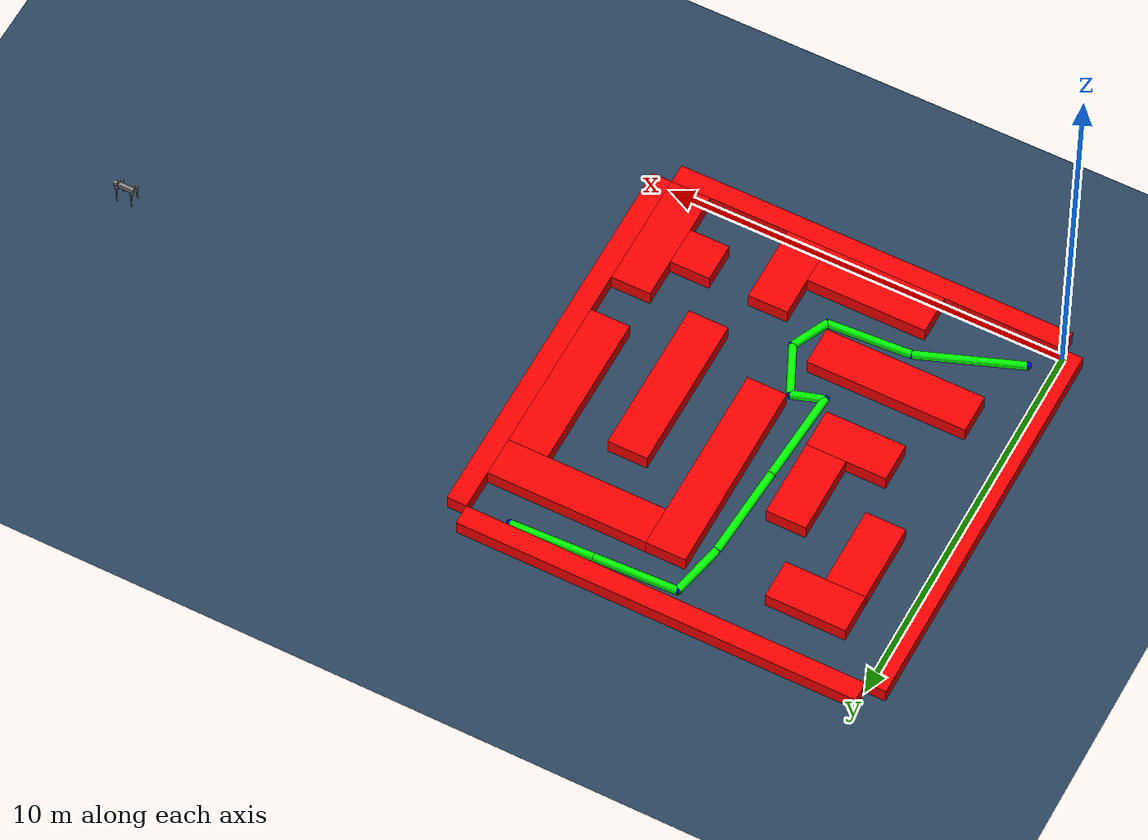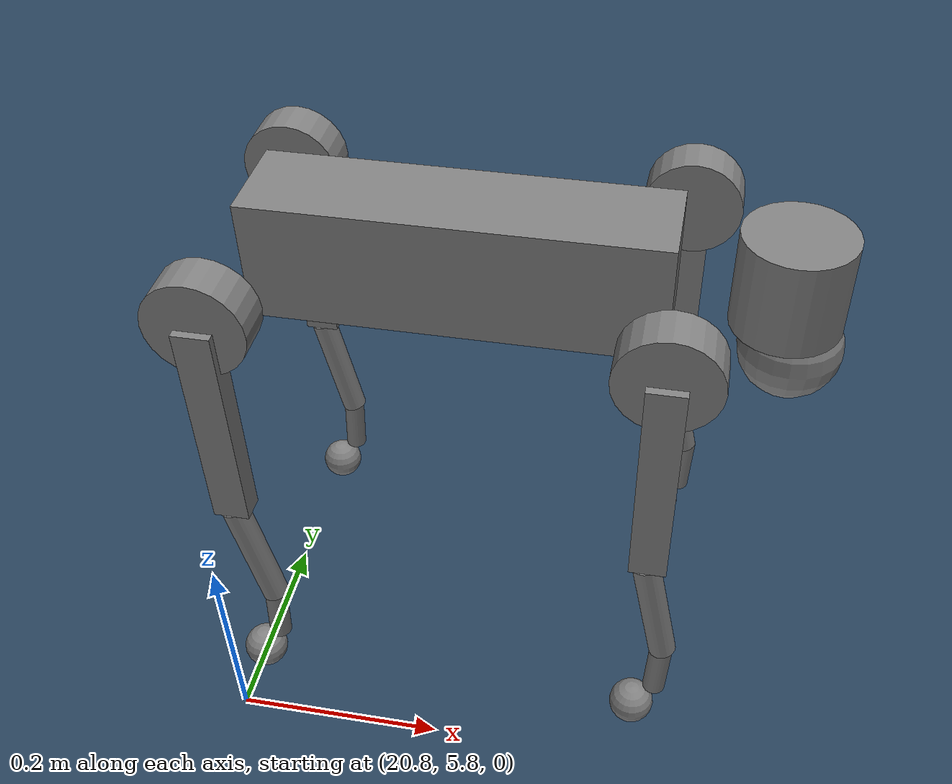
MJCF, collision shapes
<mujoco model="maze">

    <!-- import the unitree go2 -->
    <include file="go2_noel_maze.xml"/>

    <!-- create the environment which contains the obstacles -->
    <worldbody>
        <geom name="obstacle1" type="box" size="1 0.5 0.2" pos="2 8.5 0.2" rgba="1 0 0 1" contype="1" conaffinity="1"/>
        <geom name="obstacle2" type="box" size="0.5 1 0.2" pos="1.5 7 0.2" rgba="1 0 0 1" contype="1" conaffinity="1"/>
        <geom name="obstacle3" type="box" size="0.5 1 0.2" pos="3.5 6 0.2" rgba="1 0 0 1" contype="1" conaffinity="1"/>
        <geom name="obstacle4" type="box" size="1 0.5 0.2" pos="3 4.5 0.2" rgba="1 0 0 1" contype="1" conaffinity="1"/>
        <geom name="obstacle5" type="box" size="2 0.5 0.2" pos="3 2.5 0.2" rgba="1 0 0 1" contype="1" conaffinity="1"/>
        <geom name="obstacle6" type="box" size="1.5 0.5 0.2" pos="4.5 0.5 0.2" rgba="1 0 0 1" contype="1" conaffinity="1"/>
        <geom name="obstacle7" type="box" size="0.5 1 0.2" pos="6.5 1 0.2" rgba="1 0 0 1" contype="1" conaffinity="1"/>
        <geom name="obstacle8" type="box" size="0.5 2 0.2" pos="7.5 5 0.2" rgba="1 0 0 1" contype="1" conaffinity="1"/>
        <geom name="obstacle9" type="box" size="0.5 0.5 0.2" pos="8.5 1.5 0.2" rgba="1 0 0 1" contype="1" conaffinity="1"/>
        <geom name="obstacle10" type="box" size="0.5 1.5 0.2" pos="9.5 1.5 0.2" rgba="1 0 0 1" contype="1" conaffinity="1"/>
        <geom name="obstacle11" type="box" size="0.5 2.5 0.2" pos="5.5 6.5 0.2" rgba="1 0 0 1" contype="1" conaffinity="1"/>
        <geom name="obstacle12" type="box" size="2 0.5 0.2" pos="8 8.5 0.2" rgba="1 0 0 1" contype="1" conaffinity="1"/>
        <geom name="obstacle13" type="box" size="0.5 2 0.2" pos="9.5 6 0.2" rgba="1 0 0 1" contype="1" conaffinity="1"/>

        <geom name="bound_top" type="box" size="5 0.25 0.2" pos="5 10.25 0.2" rgba="1 0 0 1" contype="1" conaffinity="1"/>
        <geom name="bound_bottom" type="box" size="5 0.25 0.2" pos="5 -0.25 0.2" rgba="1 0 0 1" contype="1" conaffinity="1"/>
        <geom name="bound_left" type="box" size="0.25 5 0.2" pos="-0.25 5 0.2" rgba="1 0 0 1" contype="1" conaffinity="1"/>
        <geom name="bound_right" type="box" size="0.25 5 0.2" pos="10.25 5 0.2" rgba="1 0 0 1" contype="1" conaffinity="1"/>

    <geom name="node1" type="sphere" size="0.1" pos="0.6 0.6 0.1" rgba="0 0 1 0.5" contype="2" conaffinity="2"/>
<geom name="node2" type="sphere" size="0.1" pos="3.0575265293945115 1.5393675472933543 0.1" rgba="0 0 1 0.5" contype="2" conaffinity="2"/>
<geom name="node3" type="sphere" size="0.1" pos="5.143443392967892 1.6682645210009241 0.1" rgba="0 0 1 0.5" contype="2" conaffinity="2"/>
<geom name="node4" type="sphere" size="0.1" pos="5.57195457413796 2.5718009992973085 0.1" rgba="0 0 1 0.5" contype="2" conaffinity="2"/>
<geom name="node5" type="sphere" size="0.1" pos="5.016762195966372 3.792475491052378 0.1" rgba="0 0 1 0.5" contype="2" conaffinity="2"/>
<geom name="node6" type="sphere" size="0.1" pos="4.257225295684155 3.541995616273635 0.1" rgba="0 0 1 0.5" contype="2" conaffinity="2"/>
<geom name="node7" type="sphere" size="0.1" pos="4.418293202900143 5.914804862067537 0.1" rgba="1 1 0 0.5" contype="2" conaffinity="2"/>
<geom name="node8" type="sphere" size="0.1" pos="4.57936111011613 8.287614107861438 0.1" rgba="0 0 1 0.5" contype="2" conaffinity="2"/>
<geom name="node9" type="sphere" size="0.1" pos="4.8682057184030825 9.628523381541196 0.1" rgba="0 0 1 0.5" contype="2" conaffinity="2"/>
<geom name="node10" type="sphere" size="0.1" pos="6.934102859201541 9.714261690770599 0.1" rgba="1 1 0 0.5" contype="2" conaffinity="2"/>
<geom name="node11" type="sphere" size="0.1" pos="9 9.8 0.1" rgba="0 0 1 0.5" contype="2" conaffinity="2"/>
<geom name="cap1to2" type="capsule" fromto="0.6 0.6 0.1  3.0575265293945115 1.5393675472933543 0.1" size="0.1" rgba="0 1 0 0.5" contype="2" conaffinity="2"/>
<geom name="cap2to3" type="capsule" fromto="3.0575265293945115 1.5393675472933543 0.1  5.143443392967892 1.6682645210009241 0.1" size="0.1" rgba="0 1 0 0.5" contype="2" conaffinity="2"/>
<geom name="cap3to4" type="capsule" fromto="5.143443392967892 1.6682645210009241 0.1  5.57195457413796 2.5718009992973085 0.1" size="0.1" rgba="0 1 0 0.5" contype="2" conaffinity="2"/>
<geom name="cap4to5" type="capsule" fromto="5.57195457413796 2.5718009992973085 0.1  5.016762195966372 3.792475491052378 0.1" size="0.1" rgba="0 1 0 0.5" contype="2" conaffinity="2"/>
<geom name="cap5to6" type="capsule" fromto="5.016762195966372 3.792475491052378 0.1  4.257225295684155 3.541995616273635 0.1" size="0.1" rgba="0 1 0 0.5" contype="2" conaffinity="2"/>
<geom name="cap6to7" type="capsule" fromto="4.257225295684155 3.541995616273635 0.1  4.418293202900143 5.914804862067537 0.1" size="0.1" rgba="0 1 0 0.5" contype="2" conaffinity="2"/>
<geom name="cap7to8" type="capsule" fromto="4.418293202900143 5.914804862067537 0.1  4.57936111011613 8.287614107861438 0.1" size="0.1" rgba="0 1 0 0.5" contype="2" conaffinity="2"/>
<geom name="cap8to9" type="capsule" fromto="4.57936111011613 8.287614107861438 0.1  4.8682057184030825 9.628523381541196 0.1" size="0.1" rgba="0 1 0 0.5" contype="2" conaffinity="2"/>
<geom name="cap9to10" type="capsule" fromto="4.8682057184030825 9.628523381541196 0.1  6.934102859201541 9.714261690770599 0.1" size="0.1" rgba="0 1 0 0.5" contype="2" conaffinity="2"/>
<geom name="cap10to11" type="capsule" fromto="6.934102859201541 9.714261690770599 0.1  9 9.8 0.1" size="0.1" rgba="0 1 0 0.5" contype="2" conaffinity="2"/>
</worldbody>
</mujoco>

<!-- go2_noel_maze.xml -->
<mujoco model="go2">
  <compiler angle="radian" meshdir="assets" autolimits="true"/>

  <option cone="elliptic" impratio="100"/>

  <default>
    <default class="go2">
      <geom friction="0.6" margin="0.001" condim="1" contype="1" conaffinity="1"/>
      <joint axis="0 1 0" damping="2" armature="0.01" frictionloss="0.2"/>
      <motor ctrlrange="-23.7 23.7"/>
      <default class="abduction">
        <joint axis="1 0 0" range="-1.0472 1.0472"/>
      </default>
      <default class="hip">
        <default class="front_hip">
          <joint range="-1.5708 3.4907"/>
        </default>
        <default class="back_hip">
          <joint range="-0.5236 4.5379"/>
        </default>
      </default>
      <default class="knee">
        <joint range="-2.7227 -0.83776"/>
        <motor ctrlrange="-45.43 45.43"/>
      </default>
      <default class="visual">
        <geom type="mesh" contype="0" conaffinity="0" group="2"/>
      </default>
      <default class="collision">
        <geom group="3"/>
        <default class="foot">
          <geom size="0.022" pos="-0.002 0 -0.213" priority="1" solimp="0.015 1 0.022" condim="6"
            friction="0.8 0.02 0.01"/>
        </default>
      </default>
    </default>
  </default>

  <asset>
    <material name="metal" rgba=".9 .95 .95 1"/>
    <material name="black" rgba="0 0 0 1"/>
    <material name="white" rgba="1 1 1 1"/>
    <material name="gray" rgba="0.671705 0.692426 0.774270 1"/>

    <mesh file="base_0.obj"/>
    <mesh file="base_1.obj"/>
    <mesh file="base_2.obj"/>
    <mesh file="base_3.obj"/>
    <mesh file="base_4.obj"/>
    <mesh file="hip_0.obj"/>
    <mesh file="hip_1.obj"/>
    <mesh file="thigh_0.obj"/>
    <mesh file="thigh_1.obj"/>
    <mesh file="thigh_mirror_0.obj"/>
    <mesh file="thigh_mirror_1.obj"/>
    <mesh file="calf_0.obj"/>
    <mesh file="calf_1.obj"/>
    <mesh file="calf_mirror_0.obj"/>
    <mesh file="calf_mirror_1.obj"/>
    <mesh file="foot.obj"/>
  </asset>

  <worldbody>
    <body name="base" pos="21 6 0.445" childclass="go2">
      <inertial pos="0.021112 0 -0.005366" quat="-0.000543471 0.713435 -0.00173769 0.700719" mass="6.921"
        diaginertia="0.107027 0.0980771 0.0244531"/>
      <freejoint/>
      <geom mesh="base_0" material="black" class="visual"/>
      <geom mesh="base_1" material="black" class="visual"/>
      <geom mesh="base_2" material="black" class="visual"/>
      <geom mesh="base_3" material="white" class="visual"/>
      <geom mesh="base_4" material="gray" class="visual"/>
      <geom size="0.1881 0.04675 0.057" type="box" class="collision"/>
      <geom size="0.05 0.045" pos="0.285 0 0.01" type="cylinder" class="collision"/>
      <geom size="0.047" pos="0.293 0 -0.06" class="collision"/>
      <site name="imu" pos="-0.02557 0 0.04232"/>
      <body name="FL_hip" pos="0.1934 0.0465 0">
        <inertial pos="-0.0054 0.00194 -0.000105" quat="0.497014 0.499245 0.505462 0.498237" mass="0.678"
          diaginertia="0.00088403 0.000596003 0.000479967"/>
        <joint name="FL_hip_joint" class="abduction"/>
        <geom mesh="hip_0" material="metal" class="visual"/>
        <geom mesh="hip_1" material="gray" class="visual"/>
        <geom size="0.046 0.02" pos="0 0.08 0" quat="1 1 0 0" type="cylinder" class="collision"/>
        <body name="FL_thigh" pos="0 0.0955 0">
          <inertial pos="-0.00374 -0.0223 -0.0327" quat="0.829533 0.0847635 -0.0200632 0.551623" mass="1.152"
            diaginertia="0.00594973 0.00584149 0.000878787"/>
          <joint name="FL_thigh_joint" class="front_hip"/>
          <geom mesh="thigh_0" material="metal" class="visual"/>
          <geom mesh="thigh_1" material="gray" class="visual"/>
          <geom size="0.1065 0.01225 0.017" pos="0 0 -0.1065" quat="0.707107 0 0.707107 0" type="box" class="collision"/>
          <body name="FL_calf" pos="0 0 -0.213">
            <inertial pos="0.00629595 -0.000622121 -0.141417" quat="0.710672 0.00154099 -0.00450087 0.703508"
              mass="0.241352" diaginertia="0.0014901 0.00146356 5.31397e-05"/>
            <joint name="FL_calf_joint" class="knee"/>
            <geom mesh="calf_0" material="gray" class="visual"/>
            <geom mesh="calf_1" material="black" class="visual"/>
            <geom size="0.012 0.06" pos="0.008 0 -0.06" quat="0.994493 0 -0.104807 0" type="cylinder" class="collision"/>
            <geom size="0.011 0.0325" pos="0.02 0 -0.148" quat="0.999688 0 0.0249974 0" type="cylinder" class="collision"/>
            <geom pos="0 0 -0.213" mesh="foot" class="visual" material="black"/>
            <geom name="FL" class="foot"/>
          </body>
        </body>
      </body>
      <body name="FR_hip" pos="0.1934 -0.0465 0">
        <inertial pos="-0.0054 -0.00194 -0.000105" quat="0.498237 0.505462 0.499245 0.497014" mass="0.678"
          diaginertia="0.00088403 0.000596003 0.000479967"/>
        <joint name="FR_hip_joint" class="abduction"/>
        <geom mesh="hip_0" material="metal" class="visual" quat="4.63268e-05 1 0 0"/>
        <geom mesh="hip_1" material="gray" class="visual" quat="4.63268e-05 1 0 0"/>
        <geom size="0.046 0.02" pos="0 -0.08 0" quat="0.707107 0.707107 0 0" type="cylinder" class="collision"/>
        <body name="FR_thigh" pos="0 -0.0955 0">
          <inertial pos="-0.00374 0.0223 -0.0327" quat="0.551623 -0.0200632 0.0847635 0.829533" mass="1.152"
            diaginertia="0.00594973 0.00584149 0.000878787"/>
          <joint name="FR_thigh_joint" class="front_hip"/>
          <geom mesh="thigh_mirror_0" material="metal" class="visual"/>
          <geom mesh="thigh_mirror_1" material="gray" class="visual"/>
          <geom size="0.1065 0.01225 0.017" pos="0 0 -0.1065" quat="0.707107 0 0.707107 0" type="box" class="collision"/>
          <body name="FR_calf" pos="0 0 -0.213">
            <inertial pos="0.00629595 0.000622121 -0.141417" quat="0.703508 -0.00450087 0.00154099 0.710672"
              mass="0.241352" diaginertia="0.0014901 0.00146356 5.31397e-05"/>
            <joint name="FR_calf_joint" class="knee"/>
            <geom mesh="calf_mirror_0" material="gray" class="visual"/>
            <geom mesh="calf_mirror_1" material="black" class="visual"/>
            <geom size="0.013 0.06" pos="0.01 0 -0.06" quat="0.995004 0 -0.0998334 0" type="cylinder" class="collision"/>
            <geom size="0.011 0.0325" pos="0.02 0 -0.148" quat="0.999688 0 0.0249974 0" type="cylinder" class="collision"/>
            <geom pos="0 0 -0.213" mesh="foot" class="visual" material="black"/>
            <geom name="FR" class="foot"/>
          </body>
        </body>
      </body>
      <body name="RL_hip" pos="-0.1934 0.0465 0">
        <inertial pos="0.0054 0.00194 -0.000105" quat="0.505462 0.498237 0.497014 0.499245" mass="0.678"
          diaginertia="0.00088403 0.000596003 0.000479967"/>
        <joint name="RL_hip_joint" class="abduction"/>
        <geom mesh="hip_0" material="metal" class="visual" quat="4.63268e-05 0 1 0"/>
        <geom mesh="hip_1" material="gray" class="visual" quat="4.63268e-05 0 1 0"/>
        <geom size="0.046 0.02" pos="0 0.08 0" quat="0.707107 0.707107 0 0" type="cylinder" class="collision"/>
        <body name="RL_thigh" pos="0 0.0955 0">
          <inertial pos="-0.00374 -0.0223 -0.0327" quat="0.829533 0.0847635 -0.0200632 0.551623" mass="1.152"
            diaginertia="0.00594973 0.00584149 0.000878787"/>
          <joint name="RL_thigh_joint" class="back_hip"/>
          <geom mesh="thigh_0" material="metal" class="visual"/>
          <geom mesh="thigh_1" material="gray" class="visual"/>
          <geom size="0.1065 0.01225 0.017" pos="0 0 -0.1065" quat="0.707107 0 0.707107 0" type="box" class="collision"/>
          <body name="RL_calf" pos="0 0 -0.213">
            <inertial pos="0.00629595 -0.000622121 -0.141417" quat="0.710672 0.00154099 -0.00450087 0.703508"
              mass="0.241352" diaginertia="0.0014901 0.00146356 5.31397e-05"/>
            <joint name="RL_calf_joint" class="knee"/>
            <geom mesh="calf_0" material="gray" class="visual"/>
            <geom mesh="calf_1" material="black" class="visual"/>
            <geom size="0.013 0.06" pos="0.01 0 -0.06" quat="0.995004 0 -0.0998334 0" type="cylinder" class="collision"/>
            <geom size="0.011 0.0325" pos="0.02 0 -0.148" quat="0.999688 0 0.0249974 0" type="cylinder" class="collision"/>
            <geom pos="0 0 -0.213" mesh="foot" class="visual" material="black"/>
            <geom name="RL" class="foot"/>
          </body>
        </body>
      </body>
      <body name="RR_hip" pos="-0.1934 -0.0465 0">
        <inertial pos="0.0054 -0.00194 -0.000105" quat="0.499245 0.497014 0.498237 0.505462" mass="0.678"
          diaginertia="0.00088403 0.000596003 0.000479967"/>
        <joint name="RR_hip_joint" class="abduction"/>
        <geom mesh="hip_0" material="metal" class="visual" quat="2.14617e-09 4.63268e-05 4.63268e-05 -1"/>
        <geom mesh="hip_1" material="gray" class="visual" quat="2.14617e-09 4.63268e-05 4.63268e-05 -1"/>
        <geom size="0.046 0.02" pos="0 -0.08 0" quat="0.707107 0.707107 0 0" type="cylinder" class="collision"/>
        <body name="RR_thigh" pos="0 -0.0955 0">
          <inertial pos="-0.00374 0.0223 -0.0327" quat="0.551623 -0.0200632 0.0847635 0.829533" mass="1.152"
            diaginertia="0.00594973 0.00584149 0.000878787"/>
          <joint name="RR_thigh_joint" class="back_hip"/>
          <geom mesh="thigh_mirror_0" material="metal" class="visual"/>
          <geom mesh="thigh_mirror_1" material="gray" class="visual"/>
          <geom size="0.1065 0.01225 0.017" pos="0 0 -0.1065" quat="0.707107 0 0.707107 0" type="box" class="collision"/>
          <body name="RR_calf" pos="0 0 -0.213">
            <inertial pos="0.00629595 0.000622121 -0.141417" quat="0.703508 -0.00450087 0.00154099 0.710672"
              mass="0.241352" diaginertia="0.0014901 0.00146356 5.31397e-05"/>
            <joint name="RR_calf_joint" class="knee"/>
            <geom mesh="calf_mirror_0" material="gray" class="visual"/>
            <geom mesh="calf_mirror_1" material="black" class="visual"/>
            <geom size="0.013 0.06" pos="0.01 0 -0.06" quat="0.995004 0 -0.0998334 0" type="cylinder" class="collision"/>
            <geom size="0.011 0.0325" pos="0.02 0 -0.148" quat="0.999688 0 0.0249974 0" type="cylinder" class="collision"/>
            <geom pos="0 0 -0.213" mesh="foot" class="visual" material="black"/>
            <geom name="RR" class="foot"/>
          </body>
        </body>
      </body>
    </body>
  </worldbody>

  <actuator>
    <motor class="abduction" name="FL_hip" joint="FL_hip_joint"/>
    <motor class="hip" name="FL_thigh" joint="FL_thigh_joint"/>
    <motor class="knee" name="FL_calf" joint="FL_calf_joint"/>
    <motor class="abduction" name="FR_hip" joint="FR_hip_joint"/>
    <motor class="hip" name="FR_thigh" joint="FR_thigh_joint"/>
    <motor class="knee" name="FR_calf" joint="FR_calf_joint"/>
    <motor class="abduction" name="RL_hip" joint="RL_hip_joint"/>
    <motor class="hip" name="RL_thigh" joint="RL_thigh_joint"/>
    <motor class="knee" name="RL_calf" joint="RL_calf_joint"/>
    <motor class="abduction" name="RR_hip" joint="RR_hip_joint"/>
    <motor class="hip" name="RR_thigh" joint="RR_thigh_joint"/>
    <motor class="knee" name="RR_calf" joint="RR_calf_joint"/>
  </actuator>

  <asset>
    <texture type="skybox" builtin="gradient" rgb1="0.3 0.5 0.7" rgb2="0 0 0" width="512" height="3072"/>
    <texture type="2d" name="groundplane" builtin="checker" mark="edge" rgb1="0.2 0.3 0.4" rgb2="0.1 0.2 0.3"
      markrgb="0.8 0.8 0.8" width="300" height="300"/>
    <material name="groundplane" texture="groundplane" texuniform="true" texrepeat="5 5" reflectance="0.2"/>
  </asset>

  <worldbody>
    <light pos="0 0 1.5" dir="0 0 -1" directional="true"/>
    <geom name="floor" size="0 0 0.05" type="plane" material="groundplane"/>
   </worldbody>

  <keyframe>
    <key name="home" qpos="0 0 0.27 1 0 0 0 0 0.9 -1.8 0 0.9 -1.8 0 0.9 -1.8 0 0.9 -1.8"
      ctrl="0 0.9 -1.8 0 0.9 -1.8 0 0.9 -1.8 0 0.9 -1.8"/>
  </keyframe>
</mujoco>
